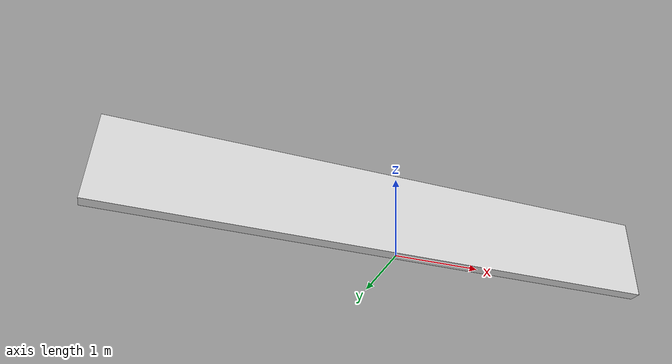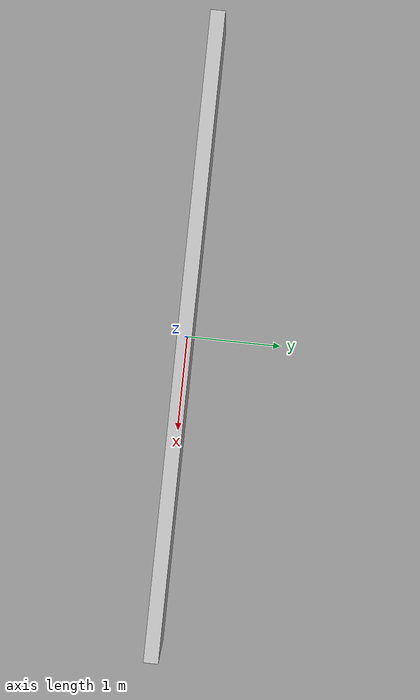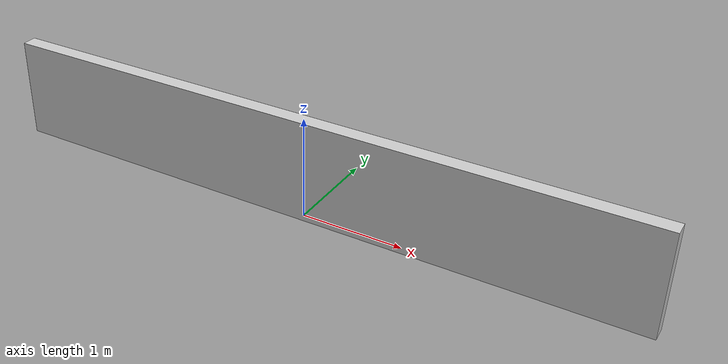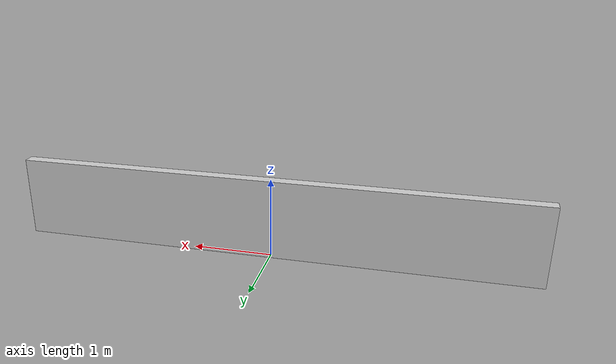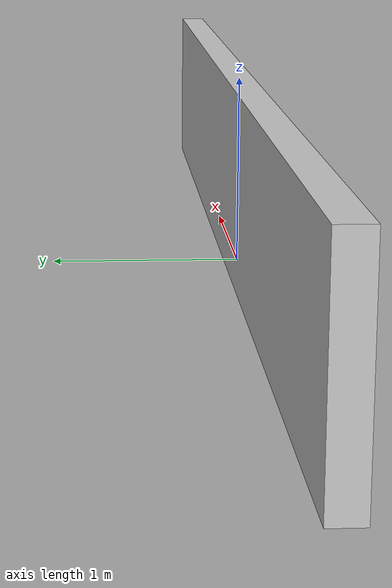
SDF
<?xml version="1.0" ?>
<sdf version="1.6">
  <model name="grass_box">
    <static>true</static>

    <pose>0 0 0.5 0 0 0</pose>

    <link name="grass_box_link">
      <!-- 盒子视觉部分 -->
      <visual name="box_visual">
        <geometry>
          <box>
            <size>6.5 0.15 1</size>
          </box>
        </geometry>
        <material>
          <ambient>0.8 0.8 0.8 1</ambient>
        </material>
      </visual>

      <!-- grass_box 视觉部分 -->
      <visual name="grass_box_visual">
        <geometry>
          <box>
            <size>6.5 0.15 1</size>
          </box>
        </geometry>
        <material>
          <script>
            <uri>model://grass_box/materials/scripts</uri>
            <uri>model://grass_box/materials/textures</uri>
            <name>grass_box_material</name>
          </script>
        </material>
      </visual>

      <!-- 碰撞体部分 -->
      <collision name="grass_box_collision">
        <geometry>
          <box>
            <size>2 2 2</size>
          </box>
        </geometry>
      </collision>
    </link>
  </model>
</sdf>
